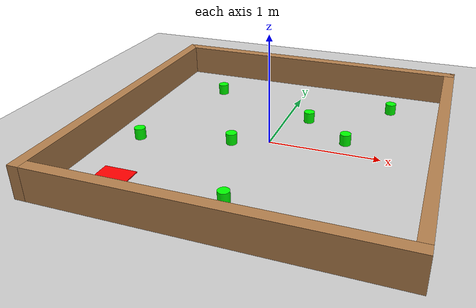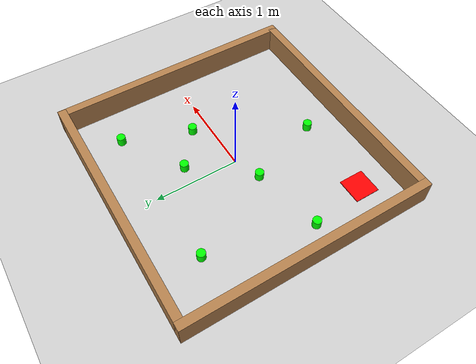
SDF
<sdf version="1.6">
 <world name="default">
  <model name="ground_plane">
   <static>1</static>
   <link name="link">
    <collision name="collision">
     <geometry><plane><normal>0 0 1</normal><size>100 100</size></plane></geometry>
     <surface>
      <contact><collide_bitmask>65535</collide_bitmask></contact>
      <friction><ode><mu>100</mu><mu2>50</mu2></ode></friction>
     </surface>
    </collision>
    <visual name="visual">
     <cast_shadows>0</cast_shadows>
     <geometry><plane><normal>0 0 1</normal><size>100 100</size></plane></geometry>
     <material>
      <script><uri>file://media/materials/scripts/gazebo.material</uri><name>Gazebo/Grey</name></script>
     </material>
    </visual>
   </link>
  </model>
  <model name="obstacle_1">
   <pose>-0.01 -1 0.0 0 0 0</pose>
   <static>0</static>
   <link name="link">
    <inertial>
     <mass>1</mass>
     <inertia><ixx>0</ixx><ixy>0</ixy><ixz>0</ixz><iyy>0</iyy><iyz>0</iyz><izz>0</izz></inertia>
    </inertial>
    <collision name="collision">
     <geometry><cylinder><radius>0.0505</radius><length>0.2</length></cylinder></geometry>
     <surface><friction><ode><mu>0.0</mu><mu2>0.0</mu2></ode></friction></surface>
    </collision>
    <visual name="visual">
     <geometry><cylinder><radius>0.0505</radius><length>0.2</length></cylinder></geometry>
     <material>
      <lighting>1</lighting>
      <script><uri>file://media/materials/scripts/gazebo.material</uri><name>Gazebo/Grey</name></script>
      <shader type="pixel"><normal_map>__default__</normal_map></shader>
      <ambient>0.3 0.3 0.3 1</ambient>
      <diffuse>0 1 0 1</diffuse>
      <specular>0.01 0.01 0.01 1</specular>
      <emissive>0 0 0 1</emissive>
     </material>
    </visual>
   </link>
  </model>
  <model name="obstacle_2">
   <pose>-1.15 -0.3 0.0 0 0 0</pose>
   <static>0</static>
   <link name="link">
    <inertial>
     <mass>1</mass>
     <inertia><ixx>0</ixx><ixy>0</ixy><ixz>0</ixz><iyy>0</iyy><iyz>0</iyz><izz>0</izz></inertia>
    </inertial>
    <collision name="collision">
     <geometry><cylinder><radius>0.0505</radius><length>0.2</length></cylinder></geometry>
     <surface><friction><ode><mu>0.0</mu><mu2>0.0</mu2></ode></friction></surface>
    </collision>
    <visual name="visual">
     <geometry><cylinder><radius>0.0505</radius><length>0.2</length></cylinder></geometry>
     <material>
      <lighting>1</lighting>
      <script><uri>file://media/materials/scripts/gazebo.material</uri><name>Gazebo/Grey</name></script>
      <shader type="pixel"><normal_map>__default__</normal_map></shader>
      <ambient>0.3 0.3 0.3 1</ambient>
      <diffuse>0 1 0 1</diffuse>
      <specular>0.01 0.01 0.01 1</specular>
      <emissive>0 0 0 1</emissive>
     </material>
    </visual>
   </link>
  </model>
  <model name="obstacle_3">
   <pose>-0.32 -0.12 0.0 0 0 0</pose>
   <static>0</static>
   <link name="link">
    <inertial>
     <mass>1</mass>
     <inertia><ixx>0</ixx><ixy>0</ixy><ixz>0</ixz><iyy>0</iyy><iyz>0</iyz><izz>0</izz></inertia>
    </inertial>
    <collision name="collision">
     <geometry><cylinder><radius>0.0505</radius><length>0.2</length></cylinder></geometry>
     <surface><friction><ode><mu>0.0</mu><mu2>0.0</mu2></ode></friction></surface>
    </collision>
    <visual name="visual">
     <geometry><cylinder><radius>0.0505</radius><length>0.2</length></cylinder></geometry>
     <material>
      <lighting>1</lighting>
      <script><uri>file://media/materials/scripts/gazebo.material</uri><name>Gazebo/Grey</name></script>
      <shader type="pixel"><normal_map>__default__</normal_map></shader>
      <ambient>0.3 0.3 0.3 1</ambient>
      <diffuse>0 1 0 1</diffuse>
      <specular>0.01 0.01 0.01 1</specular>
      <emissive>0 0 0 1</emissive>
     </material>
    </visual>
   </link>
  </model>
  <model name="obstacle_4">
   <pose>-0.85 0.92 0.0 0 0 0</pose>
   <static>0</static>
   <link name="link">
    <inertial>
     <mass>1</mass>
     <inertia><ixx>0</ixx><ixy>0</ixy><ixz>0</ixz><iyy>0</iyy><iyz>0</iyz><izz>0</izz></inertia>
    </inertial>
    <collision name="collision">
     <geometry><cylinder><radius>0.0505</radius><length>0.2</length></cylinder></geometry>
     <surface><friction><ode><mu>0.0</mu><mu2>0.0</mu2></ode></friction></surface>
    </collision>
    <visual name="visual">
     <geometry><cylinder><radius>0.0505</radius><length>0.2</length></cylinder></geometry>
     <material>
      <lighting>1</lighting>
      <script><uri>file://media/materials/scripts/gazebo.material</uri><name>Gazebo/Grey</name></script>
      <shader type="pixel"><normal_map>__default__</normal_map></shader>
      <ambient>0.3 0.3 0.3 1</ambient>
      <diffuse>0 1 0 1</diffuse>
      <specular>0.01 0.01 0.01 1</specular>
      <emissive>0 0 0 1</emissive>
     </material>
    </visual>
   </link>
  </model>
  <model name="obstacle_5">
   <pose>0.94 0.99 0.0 0 0 0</pose>
   <static>0</static>
   <link name="link">
    <inertial>
     <mass>1</mass>
     <inertia><ixx>0</ixx><ixy>0</ixy><ixz>0</ixz><iyy>0</iyy><iyz>0</iyz><izz>0</izz></inertia>
    </inertial>
    <collision name="collision">
     <geometry><cylinder><radius>0.0505</radius><length>0.2</length></cylinder></geometry>
     <surface><friction><ode><mu>0.0</mu><mu2>0.0</mu2></ode></friction></surface>
    </collision>
    <visual name="visual">
     <geometry><cylinder><radius>0.0505</radius><length>0.2</length></cylinder></geometry>
     <material>
      <lighting>1</lighting>
      <script><uri>file://media/materials/scripts/gazebo.material</uri><name>Gazebo/Grey</name></script>
      <shader type="pixel"><normal_map>__default__</normal_map></shader>
      <ambient>0.3 0.3 0.3 1</ambient>
      <diffuse>0 1 0 1</diffuse>
      <specular>0.01 0.01 0.01 1</specular>
      <emissive>0 0 0 1</emissive>
     </material>
    </visual>
   </link>
  </model>
  <model name="obstacle_6">
   <pose>0.65 0.2 0.0 0 0 0</pose>
   <static>0</static>
   <link name="link">
    <inertial>
     <mass>1</mass>
     <inertia><ixx>0</ixx><ixy>0</ixy><ixz>0</ixz><iyy>0</iyy><iyz>0</iyz><izz>0</izz></inertia>
    </inertial>
    <collision name="collision">
     <geometry><cylinder><radius>0.0505</radius><length>0.2</length></cylinder></geometry>
     <surface><friction><ode><mu>0.0</mu><mu2>0.0</mu2></ode></friction></surface>
    </collision>
    <visual name="visual">
     <geometry><cylinder><radius>0.0505</radius><length>0.2</length></cylinder></geometry>
     <material>
      <lighting>1</lighting>
      <script><uri>file://media/materials/scripts/gazebo.material</uri><name>Gazebo/Grey</name></script>
      <shader type="pixel"><normal_map>__default__</normal_map></shader>
      <ambient>0.3 0.3 0.3 1</ambient>
      <diffuse>0 1 0 1</diffuse>
      <specular>0.01 0.01 0.01 1</specular>
      <emissive>0 0 0 1</emissive>
     </material>
    </visual>
   </link>
  </model>
  <model name="obstacle_7">
   <pose>0.22 0.54 0.0 0 0 0</pose>
   <static>0</static>
   <link name="link">
    <inertial>
     <mass>1</mass>
     <inertia><ixx>0</ixx><ixy>0</ixy><ixz>0</ixz><iyy>0</iyy><iyz>0</iyz><izz>0</izz></inertia>
    </inertial>
    <collision name="collision">
     <geometry><cylinder><radius>0.0505</radius><length>0.2</length></cylinder></geometry>
     <surface><friction><ode><mu>0.0</mu><mu2>0.0</mu2></ode></friction></surface>
    </collision>
    <visual name="visual">
     <geometry><cylinder><radius>0.0505</radius><length>0.2</length></cylinder></geometry>
     <material>
      <lighting>1</lighting>
      <script><uri>file://media/materials/scripts/gazebo.material</uri><name>Gazebo/Grey</name></script>
      <shader type="pixel"><normal_map>__default__</normal_map></shader>
      <ambient>0.3 0.3 0.3 1</ambient>
      <diffuse>0 1 0 1</diffuse>
      <specular>0.01 0.01 0.01 1</specular>
      <emissive>0 0 0 1</emissive>
     </material>
    </visual>
   </link>
  </model>
  <model name="obstacle_8">
   <pose>0.22 0.54 0.0 0 0 0</pose>
   <static>0</static>
   <link name="link">
    <inertial>
     <mass>1</mass>
     <inertia><ixx>0</ixx><ixy>0</ixy><ixz>0</ixz><iyy>0</iyy><iyz>0</iyz><izz>0</izz></inertia>
    </inertial>
    <collision name="collision">
     <geometry><cylinder><radius>0.0505</radius><length>0.2</length></cylinder></geometry>
     <surface><friction><ode><mu>0.0</mu><mu2>0.0</mu2></ode></friction></surface>
    </collision>
    <visual name="visual">
     <geometry><cylinder><radius>0.0505</radius><length>0.2</length></cylinder></geometry>
     <material>
      <lighting>1</lighting>
      <script><uri>file://media/materials/scripts/gazebo.material</uri><name>Gazebo/Grey</name></script>
      <shader type="pixel"><normal_map>__default__</normal_map></shader>
      <ambient>0.3 0.3 0.3 1</ambient>
      <diffuse>0 1 0 1</diffuse>
      <specular>0.01 0.01 0.01 1</specular>
      <emissive>0 0 0 1</emissive>
     </material>
    </visual>
   </link>
  </model>
  <model name="obstacle_9">
   <pose>0.22 0.54 0.0 0 0 0</pose>
   <static>0</static>
   <link name="link">
    <inertial>
     <mass>1</mass>
     <inertia><ixx>0</ixx><ixy>0</ixy><ixz>0</ixz><iyy>0</iyy><iyz>0</iyz><izz>0</izz></inertia>
    </inertial>
    <collision name="collision">
     <geometry><cylinder><radius>0.0505</radius><length>0.2</length></cylinder></geometry>
     <surface><friction><ode><mu>0.0</mu><mu2>0.0</mu2></ode></friction></surface>
    </collision>
    <visual name="visual">
     <geometry><cylinder><radius>0.0505</radius><length>0.2</length></cylinder></geometry>
     <material>
      <lighting>1</lighting>
      <script><uri>file://media/materials/scripts/gazebo.material</uri><name>Gazebo/Grey</name></script>
      <shader type="pixel"><normal_map>__default__</normal_map></shader>
      <ambient>0.3 0.3 0.3 1</ambient>
      <diffuse>0 1 0 1</diffuse>
      <specular>0.01 0.01 0.01 1</specular>
      <emissive>0 0 0 1</emissive>
     </material>
    </visual>
   </link>
  </model>
  <model name="obstacle_10">
   <pose>0.22 0.54 0.0 0 0 0</pose>
   <static>0</static>
   <link name="link">
    <inertial>
     <mass>1</mass>
     <inertia><ixx>0</ixx><ixy>0</ixy><ixz>0</ixz><iyy>0</iyy><iyz>0</iyz><izz>0</izz></inertia>
    </inertial>
    <collision name="collision">
     <geometry><cylinder><radius>0.0505</radius><length>0.2</length></cylinder></geometry>
     <surface><friction><ode><mu>0.0</mu><mu2>0.0</mu2></ode></friction></surface>
    </collision>
    <visual name="visual">
     <geometry><cylinder><radius>0.0505</radius><length>0.2</length></cylinder></geometry>
     <material>
      <lighting>1</lighting>
      <script><uri>file://media/materials/scripts/gazebo.material</uri><name>Gazebo/Grey</name></script>
      <shader type="pixel"><normal_map>__default__</normal_map></shader>
      <ambient>0.3 0.3 0.3 1</ambient>
      <diffuse>0 1 0 1</diffuse>
      <specular>0.01 0.01 0.01 1</specular>
      <emissive>0 0 0 1</emissive>
     </material>
    </visual>
   </link>
  </model>
  <model name="obstacle_11">
   <pose>0.22 0.54 0.0 0 0 0</pose>
   <static>0</static>
   <link name="link">
    <inertial>
     <mass>1</mass>
     <inertia><ixx>0</ixx><ixy>0</ixy><ixz>0</ixz><iyy>0</iyy><iyz>0</iyz><izz>0</izz></inertia>
    </inertial>
    <collision name="collision">
     <geometry><cylinder><radius>0.0505</radius><length>0.2</length></cylinder></geometry>
     <surface><friction><ode><mu>0.0</mu><mu2>0.0</mu2></ode></friction></surface>
    </collision>
    <visual name="visual">
     <geometry><cylinder><radius>0.0505</radius><length>0.2</length></cylinder></geometry>
     <material>
      <lighting>1</lighting>
      <script><uri>file://media/materials/scripts/gazebo.material</uri><name>Gazebo/Grey</name></script>
      <shader type="pixel"><normal_map>__default__</normal_map></shader>
      <ambient>0.3 0.3 0.3 1</ambient>
      <diffuse>0 1 0 1</diffuse>
      <specular>0.01 0.01 0.01 1</specular>
      <emissive>0 0 0 1</emissive>
     </material>
    </visual>
   </link>
  </model>
  <model name="obstacle_12">
   <pose>0.22 0.54 0.0 0 0 0</pose>
   <static>0</static>
   <link name="link">
    <inertial>
     <mass>1</mass>
     <inertia><ixx>0</ixx><ixy>0</ixy><ixz>0</ixz><iyy>0</iyy><iyz>0</iyz><izz>0</izz></inertia>
    </inertial>
    <collision name="collision">
     <geometry><cylinder><radius>0.0505</radius><length>0.2</length></cylinder></geometry>
     <surface><friction><ode><mu>0.0</mu><mu2>0.0</mu2></ode></friction></surface>
    </collision>
    <visual name="visual">
     <geometry><cylinder><radius>0.0505</radius><length>0.2</length></cylinder></geometry>
     <material>
      <lighting>1</lighting>
      <script><uri>file://media/materials/scripts/gazebo.material</uri><name>Gazebo/Grey</name></script>
      <shader type="pixel"><normal_map>__default__</normal_map></shader>
      <ambient>0.3 0.3 0.3 1</ambient>
      <diffuse>0 1 0 1</diffuse>
      <specular>0.01 0.01 0.01 1</specular>
      <emissive>0 0 0 1</emissive>
     </material>
    </visual>
   </link>
  </model>
  <model name="obstacle_13">
   <pose>0.22 0.54 0.0 0 0 0</pose>
   <static>0</static>
   <link name="link">
    <inertial>
     <mass>1</mass>
     <inertia><ixx>0</ixx><ixy>0</ixy><ixz>0</ixz><iyy>0</iyy><iyz>0</iyz><izz>0</izz></inertia>
    </inertial>
    <collision name="collision">
     <geometry><cylinder><radius>0.0505</radius><length>0.2</length></cylinder></geometry>
     <surface><friction><ode><mu>0.0</mu><mu2>0.0</mu2></ode></friction></surface>
    </collision>
    <visual name="visual">
     <geometry><cylinder><radius>0.0505</radius><length>0.2</length></cylinder></geometry>
     <material>
      <lighting>1</lighting>
      <script><uri>file://media/materials/scripts/gazebo.material</uri><name>Gazebo/Grey</name></script>
      <shader type="pixel"><normal_map>__default__</normal_map></shader>
      <ambient>0.3 0.3 0.3 1</ambient>
      <diffuse>0 1 0 1</diffuse>
      <specular>0.01 0.01 0.01 1</specular>
      <emissive>0 0 0 1</emissive>
     </material>
    </visual>
   </link>
  </model>
  <model name="obstacle_14">
   <pose>0.22 0.54 0.0 0 0 0</pose>
   <static>0</static>
   <link name="link">
    <inertial>
     <mass>1</mass>
     <inertia><ixx>0</ixx><ixy>0</ixy><ixz>0</ixz><iyy>0</iyy><iyz>0</iyz><izz>0</izz></inertia>
    </inertial>
    <collision name="collision">
     <geometry><cylinder><radius>0.0505</radius><length>0.2</length></cylinder></geometry>
     <surface><friction><ode><mu>0.0</mu><mu2>0.0</mu2></ode></friction></surface>
    </collision>
    <visual name="visual">
     <geometry><cylinder><radius>0.0505</radius><length>0.2</length></cylinder></geometry>
     <material>
      <lighting>1</lighting>
      <script><uri>file://media/materials/scripts/gazebo.material</uri><name>Gazebo/Grey</name></script>
      <shader type="pixel"><normal_map>__default__</normal_map></shader>
      <ambient>0.3 0.3 0.3 1</ambient>
      <diffuse>0 1 0 1</diffuse>
      <specular>0.01 0.01 0.01 1</specular>
      <emissive>0 0 0 1</emissive>
     </material>
    </visual>
   </link>
  </model>
  <model name="square_room">
   <pose>-0.006074 0.005376 0 0 -0 0</pose>
   <link name="Wall_0">
    <collision name="Wall_0_Collision">
     <geometry><box><size>3 0.1 0.3</size></box></geometry>
     <pose>0 0 0.15 0 -0 0</pose>
    </collision>
    <visual name="Wall_0_Visual">
     <pose>0 0 0.15 0 -0 0</pose>
     <geometry><box><size>3 0.1 0.3</size></box></geometry>
     <material>
      <script><uri>file://media/materials/scripts/gazebo.material</uri><name>Gazebo/Wood</name></script>
      <ambient>1 1 1 1</ambient>
     </material>
     <meta><layer>0</layer></meta>
    </visual>
    <pose>-0 1.45 0 0 -0 0</pose>
   </link>
   <link name="Wall_1">
    <collision name="Wall_1_Collision">
     <geometry><box><size>3 0.1 0.3</size></box></geometry>
     <pose>0 0 0.15 0 -0 0</pose>
    </collision>
    <visual name="Wall_1_Visual">
     <pose>0 0 0.15 0 -0 0</pose>
     <geometry><box><size>3 0.1 0.3</size></box></geometry>
     <material>
      <script><uri>file://media/materials/scripts/gazebo.material</uri><name>Gazebo/Wood</name></script>
      <ambient>1 1 1 1</ambient>
     </material>
     <meta><layer>0</layer></meta>
    </visual>
    <pose>1.455 0 0 0 -0 -1.5708</pose>
   </link>
   <link name="Wall_2">
    <collision name="Wall_2_Collision">
     <geometry><box><size>3 0.1 0.3</size></box></geometry>
     <pose>0 0 0.15 0 -0 0</pose>
    </collision>
    <visual name="Wall_2_Visual">
     <pose>0 0 0.15 0 -0 0</pose>
     <geometry><box><size>3 0.1 0.3</size></box></geometry>
     <material>
      <script><uri>file://media/materials/scripts/gazebo.material</uri><name>Gazebo/Wood</name></script>
      <ambient>1 1 1 1</ambient>
     </material>
     <meta><layer>0</layer></meta>
    </visual>
    <pose>0.005 -1.45 0 0 -0 3.14159</pose>
   </link>
   <link name="Wall_3">
    <collision name="Wall_3_Collision">
     <geometry><box><size>3 0.1 0.3</size></box></geometry>
     <pose>0 0 0.15 0 -0 0</pose>
    </collision>
    <visual name="Wall_3_Visual">
     <pose>0 0 0.15 0 -0 0</pose>
     <geometry><box><size>3 0.1 0.3</size></box></geometry>
     <material>
      <script><uri>file://media/materials/scripts/gazebo.material</uri><name>Gazebo/Wood</name></script>
      <ambient>1 1 1 1</ambient>
     </material>
     <meta><layer>0</layer></meta>
    </visual>
    <pose>-1.455 0 0 0 -0 1.5708</pose>
   </link>
   <static>1</static>
  </model>
  <model name="goal_region">
   <link name="link_0">
    <inertial>
     <mass>1</mass>
     <inertia>
      <ixx>0.166667</ixx>
      <ixy>0</ixy>
      <ixz>0</ixz>
      <iyy>0.166667</iyy>
      <iyz>0</iyz>
      <izz>0.166667</izz>
     </inertia>
    </inertial>
    <gravity>0</gravity>
    <visual name="visual">
     <geometry><box><size>0.3 0.3 0.01</size></box></geometry>
     <material>
      <lighting>1</lighting>
      <script><uri>file://media/materials/scripts/gazebo.material</uri><name>Gazebo/Grey</name></script>
      <shader type="pixel"><normal_map>__default__</normal_map></shader>
      <ambient>0.3 0.3 0.3 1</ambient>
      <diffuse>1 0 0 1</diffuse>
      <specular>0.01 0.01 0.01 1</specular>
      <emissive>0 0 0 1</emissive>
     </material>
    </visual>
   </link>
   <static>0</static>
   <pose>-1 -1 0 0 -0 0</pose>
  </model>
 </world>
</sdf>
